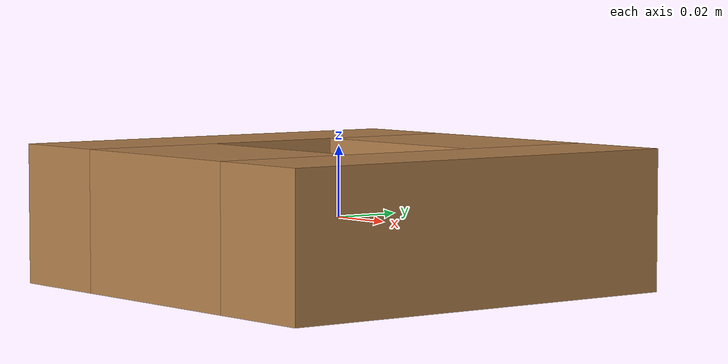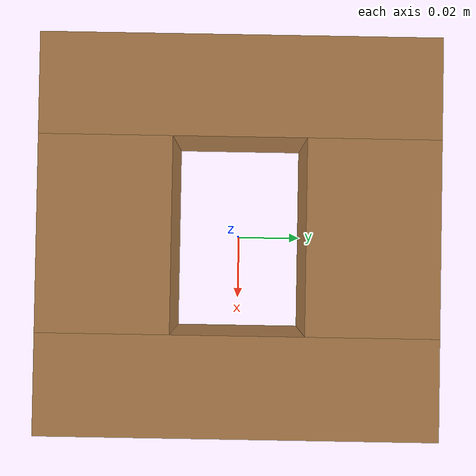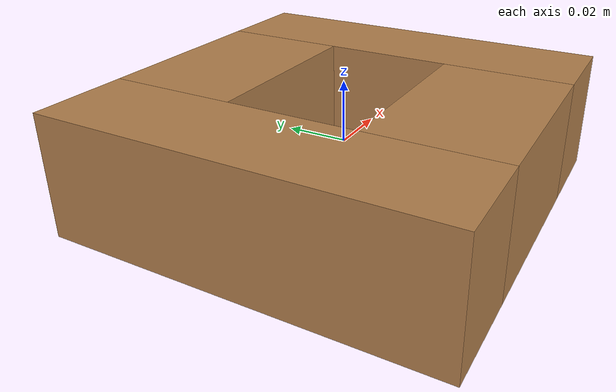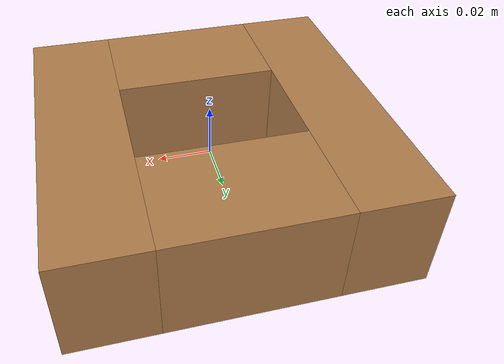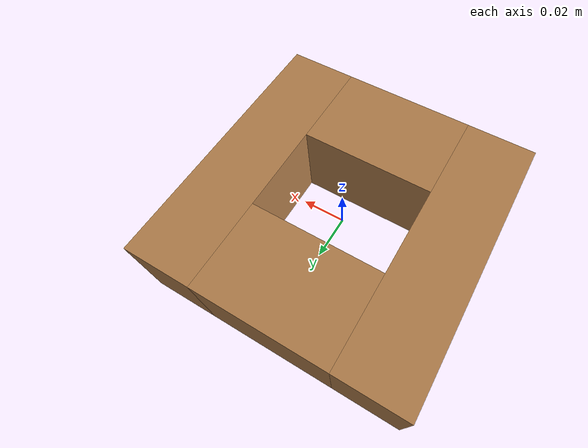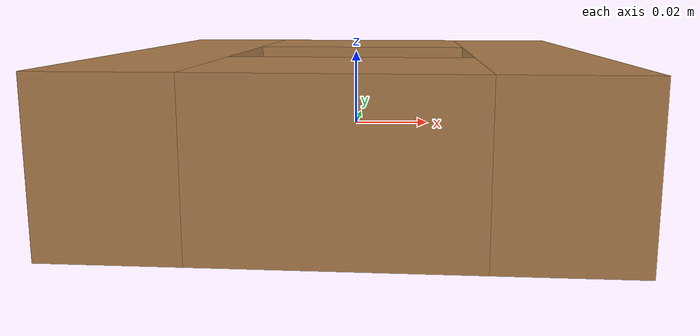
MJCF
<mujoco model="hole">
  <asset>
    <texture file="../textures/red-wood.png" type="cube" name="red-wood" />
    <material name="plate_mat" texture="red-wood" texrepeat="3 3" specular="0.4" shininess="0.1" />
  </asset>
  <worldbody>
    <body>
      <body name="object">
        <site rgba="0 0 0 0" size="0.005" pos="0 0 0.0" name="center"/>
        <site pos="0 0 0" size="0.005 .1" quat="0.707105  0 0.707108 0 " rgba="1 0 0 0" type="cylinder" group="1"/>
        <site pos="0 0 0" size="0.005 .1" quat="0.707105 0.707108 0 0" rgba="0 1 0 0" type="cylinder" group="1"/>
        <site pos="0 0 0" size="0.005 .1" quat="1 0 0 0" rgba="0 0 1 0" type="cylinder" group="1"/>
        <geom pos="-0.047 0 0" size="0.016 0.063 0.02" type="box" solref=".004 1" group="0" material="plate_mat" />
        <geom pos="0.047 0 0" size="0.016 0.063 0.02" type="box" solref=".004 1" group="0" material="plate_mat" />
        <geom pos="0.0 -0.042 0" size="0.031 0.021 0.02" type="box" solref=".004 1" group="0" material="plate_mat" />
        <geom pos="0.0 0.042 0" size="0.031 0.021 0.02" type="box" solref=".004 1" group="0" material="plate_mat" />
      </body>
    </body>
  </worldbody>
</mujoco>
